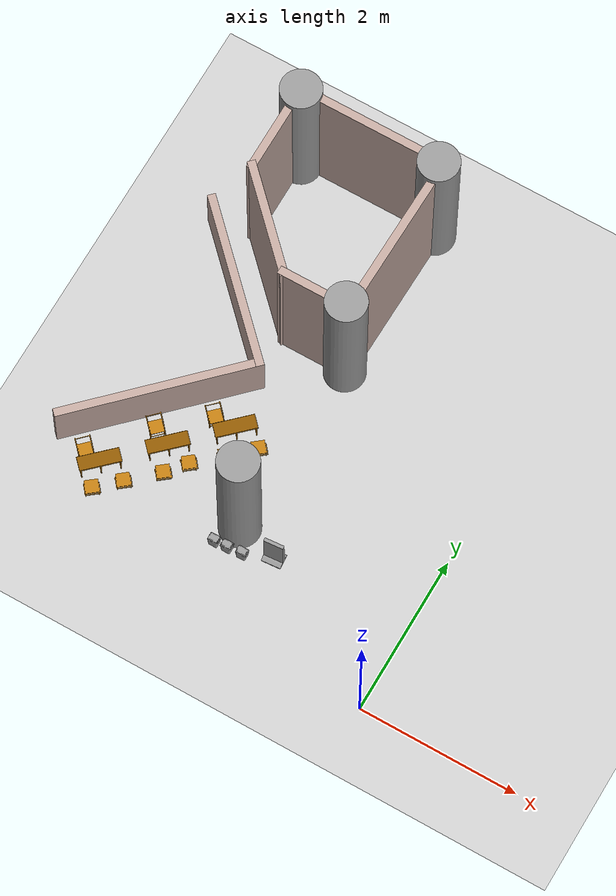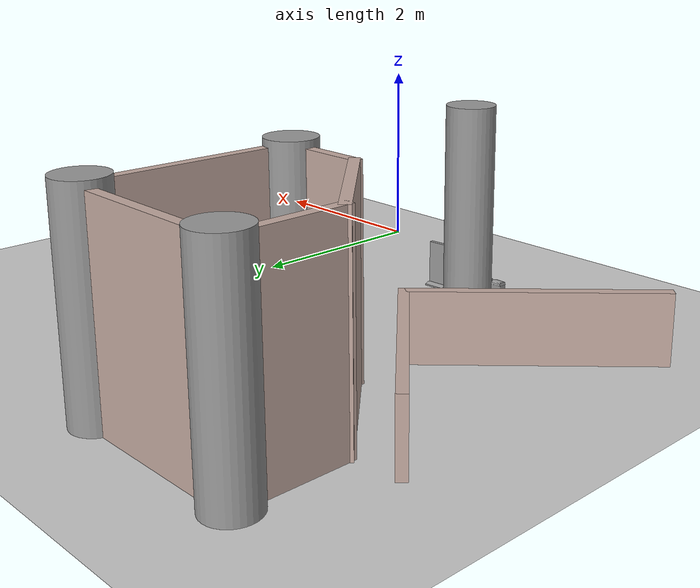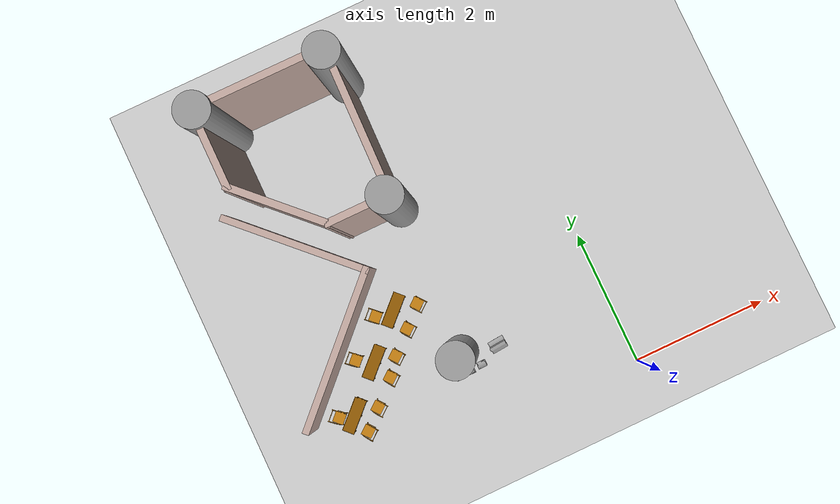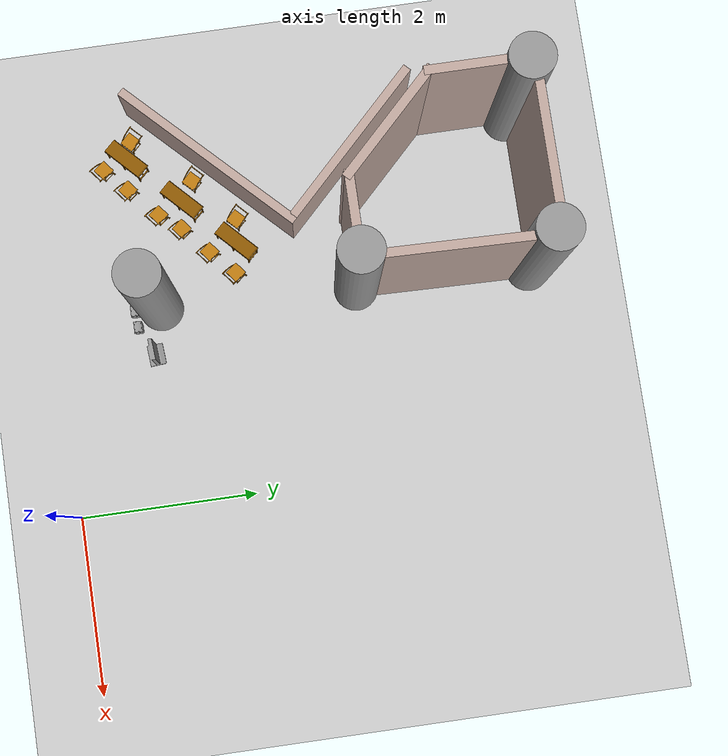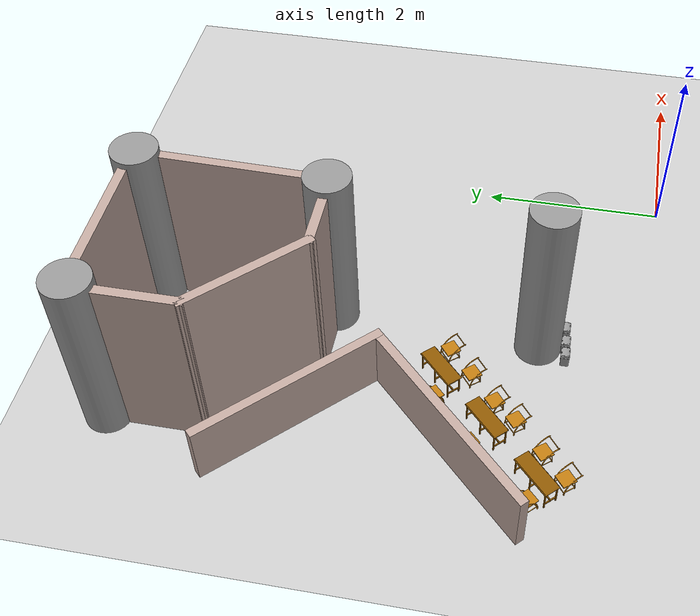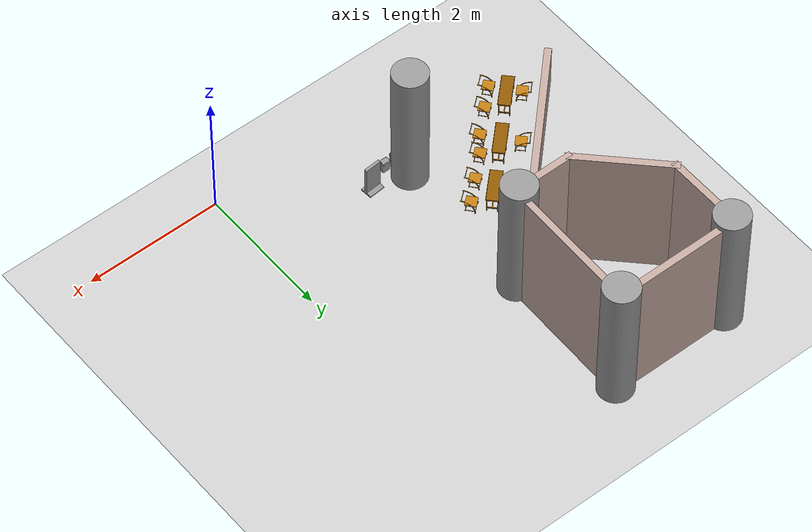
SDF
<sdf version="1.6">
 <world name="default">
  <model name="ground_plane">
   <static>1</static>
   <link name="link">
    <collision name="collision">
     <geometry><plane><normal>0 0 1</normal><size>100 100</size></plane></geometry>
     <surface>
      <contact><collide_bitmask>65535</collide_bitmask></contact>
      <friction><ode><mu>100</mu><mu2>50</mu2></ode></friction>
     </surface>
    </collision>
    <visual name="visual">
     <cast_shadows>0</cast_shadows>
     <geometry><plane><normal>0 0 1</normal><size>100 100</size></plane></geometry>
     <material>
      <script><uri>file://media/materials/scripts/gazebo.material</uri><name>Gazebo/Grey</name></script>
     </material>
    </visual>
   </link>
  </model>
  <model name="gedung_p">
   <pose>2.96636 -2.09069 0 0 -0 0</pose>
   <link name="Wall_104">
    <collision name="Wall_104_Collision">
     <geometry><box><size>1.44987 0.1 2</size></box></geometry>
     <pose>0 0 1 0 -0 0</pose>
    </collision>
    <visual name="Wall_104_Visual">
     <pose>0 0 1 0 -0 0</pose>
     <geometry><box><size>1.44987 0.1 2</size></box></geometry>
     <material>
      <script><uri>file://media/materials/scripts/gazebo.material</uri><name>Gazebo/Grey</name></script>
      <ambient>0.760784 0.662745 0.627451 1</ambient>
     </material>
     <meta><layer>0</layer></meta>
    </visual>
    <pose>-6.41651 6.00131 0 0 -0 -0.785922</pose>
   </link>
   <link name="Wall_105">
    <collision name="Wall_105_Collision">
     <geometry><box><size>0.95 0.1 2</size></box></geometry>
     <pose>0 0 1 0 -0 0</pose>
    </collision>
    <visual name="Wall_105_Visual">
     <pose>0 0 1 0 -0 0</pose>
     <geometry><box><size>0.95 0.1 2</size></box></geometry>
     <material>
      <script><uri>file://media/materials/scripts/gazebo.material</uri><name>Gazebo/Grey</name></script>
      <ambient>0.760784 0.662745 0.627451 1</ambient>
     </material>
     <meta><layer>0</layer></meta>
    </visual>
    <pose>-5.51451 5.52381 0 0 -0 0</pose>
   </link>
   <link name="Wall_124">
    <collision name="Wall_124_Collision">
     <geometry><box><size>1.2 0.1 2</size></box></geometry>
     <pose>0 0 1 0 -0 0</pose>
    </collision>
    <visual name="Wall_124_Visual">
     <pose>0 0 1 0 -0 0</pose>
     <geometry><box><size>1.2 0.1 2</size></box></geometry>
     <material>
      <script><uri>file://media/materials/scripts/gazebo.material</uri><name>Gazebo/Grey</name></script>
      <ambient>0.760784 0.662745 0.627451 1</ambient>
     </material>
     <meta><layer>0</layer></meta>
    </visual>
    <pose>-6.89351 7.02881 0 0 -0 1.5708</pose>
   </link>
   <link name="Wall_125">
    <collision name="Wall_125_Collision">
     <geometry><box><size>1.95 0.1 2</size></box></geometry>
     <pose>0 0 1 0 -0 0</pose>
    </collision>
    <visual name="Wall_125_Visual">
     <pose>0 0 1 0 -0 0</pose>
     <geometry><box><size>1.95 0.1 2</size></box></geometry>
     <material>
      <script><uri>file://media/materials/scripts/gazebo.material</uri><name>Gazebo/Grey</name></script>
      <ambient>0.760784 0.662745 0.627451 1</ambient>
     </material>
     <meta><layer>0</layer></meta>
    </visual>
    <pose>-5.96851 7.57881 0 0 -0 0</pose>
   </link>
   <link name="Wall_126">
    <collision name="Wall_126_Collision">
     <geometry><box><size>2.15551 0.1 2</size></box></geometry>
     <pose>0 0 1 0 -0 0</pose>
    </collision>
    <visual name="Wall_126_Visual">
     <pose>0 0 1 0 -0 0</pose>
     <geometry><box><size>2.15551 0.1 2</size></box></geometry>
     <material>
      <script><uri>file://media/materials/scripts/gazebo.material</uri><name>Gazebo/Grey</name></script>
      <ambient>0.760784 0.662745 0.627451 1</ambient>
     </material>
     <meta><layer>0</layer></meta>
    </visual>
    <pose>-5.06651 6.55131 0 0 -0 -1.59318</pose>
   </link>
   <link name="Wall_274">
    <collision name="Wall_274_Collision">
     <geometry><box><size>0.286601 0.2 2</size></box></geometry>
     <pose>0 0 1 0 -0 0</pose>
    </collision>
    <visual name="Wall_274_Visual">
     <pose>0 0 1 0 -0 0</pose>
     <geometry><box><size>0.286601 0.2 2</size></box></geometry>
     <material>
      <script><uri>file://media/materials/scripts/gazebo.material</uri><name>Gazebo/Grey</name></script>
      <ambient>0.760784 0.662745 0.627451 1</ambient>
     </material>
     <meta><layer>0</layer></meta>
    </visual>
    <pose>-5.16914 3.28263 0 0 -0 0.110657</pose>
   </link>
   <link name="Wall_36">
    <collision name="Wall_36_Collision">
     <geometry><box><size>2.2 0.1 0.7</size></box></geometry>
     <pose>0 0 0.35 0 -0 0</pose>
    </collision>
    <visual name="Wall_36_Visual">
     <pose>0 0 0.35 0 -0 0</pose>
     <geometry><box><size>2.2 0.1 0.7</size></box></geometry>
     <material>
      <script><uri>file://media/materials/scripts/gazebo.material</uri><name>Gazebo/Grey</name></script>
      <ambient>0.760784 0.662745 0.627451 1</ambient>
     </material>
     <meta><layer>0</layer></meta>
    </visual>
    <pose>-6.64101 5.64931 0 0 -0 -0.785398</pose>
   </link>
   <link name="Wall_38">
    <collision name="Wall_38_Collision">
     <geometry><box><size>2.45 0.1 0.7</size></box></geometry>
     <pose>0 0 0.35 0 -0 0</pose>
    </collision>
    <visual name="Wall_38_Visual">
     <pose>0 0 0.35 0 -0 0</pose>
     <geometry><box><size>2.45 0.1 0.7</size></box></geometry>
     <material>
      <script><uri>file://media/materials/scripts/gazebo.material</uri><name>Gazebo/Grey</name></script>
      <ambient>0.760784 0.662745 0.627451 1</ambient>
     </material>
     <meta><layer>0</layer></meta>
    </visual>
    <pose>-6.72951 4.0758 0 0 -0 -2.35619</pose>
   </link>
   <static>1</static>
  </model>
  <model name="tiang_besar_23">
   <link name="link_0">
    <inertial>
     <mass>1</mass>
     <inertia>
      <ixx>0.166667</ixx>
      <ixy>0</ixy>
      <ixz>0</ixz>
      <iyy>0.166667</iyy>
      <iyz>0</iyz>
      <izz>0.166667</izz>
     </inertia>
    </inertial>
    <pose>0.080543 -0.031124 0 0 -0 0</pose>
    <visual name="visual">
     <geometry>
      <mesh><uri>/home/thardi/Gazebo Objek/cylinder sedang.dae</uri><scale>1 1 1.15</scale></mesh>
     </geometry>
     <material>
      <lighting>1</lighting>
      <script><uri>file://media/materials/scripts/gazebo.material</uri><name>Gazebo/Grey</name></script>
      <shader type="vertex"><normal_map>__default__</normal_map></shader>
      <ambient>0.3 0.3 0.3 1</ambient>
      <diffuse>0.7 0.7 0.7 1</diffuse>
      <specular>0.01 0.01 0.01 1</specular>
      <emissive>0 0 0 1</emissive>
     </material>
    </visual>
    <collision name="collision">
     <geometry>
      <mesh><uri>/home/thardi/Gazebo Objek/cylinder sedang.dae</uri><scale>1 1 1.15</scale></mesh>
     </geometry>
     <surface>
      <friction>
       <ode><mu>1.15</mu><mu2>1</mu2><fdir1>0 0 0</fdir1><slip1>0</slip1><slip2>0</slip2></ode>
       <torsional>
        <coefficient>1</coefficient>
        <patch_radius>0</patch_radius>
        <surface_radius>0</surface_radius>
        <use_patch_radius>1</use_patch_radius>
        <ode><slip>0</slip></ode>
       </torsional>
      </friction>
      <bounce><restitution_coefficient>0</restitution_coefficient><threshold>1e+06</threshold></bounce>
      <contact>
       <collide_without_contact>0</collide_without_contact>
       <collide_without_contact_bitmask>1</collide_without_contact_bitmask>
       <collide_bitmask>1</collide_bitmask>
       <ode>
        <soft_cfm>0</soft_cfm>
        <soft_erp>0.2</soft_erp>
        <kp>1e+13</kp>
        <kd>1</kd>
        <max_vel>0.01</max_vel>
        <min_depth>0</min_depth>
       </ode>
       <bullet>
        <split_impulse>1</split_impulse>
        <split_impulse_penetration_threshold>-0.01</split_impulse_penetration_threshold>
        <soft_cfm>0</soft_cfm>
        <soft_erp>0.2</soft_erp>
        <kp>1e+13</kp>
        <kd>1</kd>
       </bullet>
      </contact>
     </surface>
    </collision>
   </link>
   <static>1</static>
   <pose>-3.98707 5.47813 0 0 -0 0</pose>
  </model>
  <model name="tiang_besar_24">
   <link name="link_0">
    <inertial>
     <mass>1</mass>
     <inertia>
      <ixx>0.166667</ixx>
      <ixy>0</ixy>
      <ixz>0</ixz>
      <iyy>0.166667</iyy>
      <iyz>0</iyz>
      <izz>0.166667</izz>
     </inertia>
    </inertial>
    <pose>0.080543 -0.031124 0 0 -0 0</pose>
    <visual name="visual">
     <geometry>
      <mesh><uri>/home/thardi/Gazebo Objek/cylinder sedang.dae</uri><scale>1 1 1.15</scale></mesh>
     </geometry>
     <material>
      <lighting>1</lighting>
      <script><uri>file://media/materials/scripts/gazebo.material</uri><name>Gazebo/Grey</name></script>
      <shader type="vertex"><normal_map>__default__</normal_map></shader>
      <ambient>0.3 0.3 0.3 1</ambient>
      <diffuse>0.7 0.7 0.7 1</diffuse>
      <specular>0.01 0.01 0.01 1</specular>
      <emissive>0 0 0 1</emissive>
     </material>
    </visual>
    <collision name="collision">
     <geometry>
      <mesh><uri>/home/thardi/Gazebo Objek/cylinder sedang.dae</uri><scale>1 1 1.15</scale></mesh>
     </geometry>
     <surface>
      <friction>
       <ode><mu>1.15</mu><mu2>1</mu2><fdir1>0 0 0</fdir1><slip1>0</slip1><slip2>0</slip2></ode>
       <torsional>
        <coefficient>1</coefficient>
        <patch_radius>0</patch_radius>
        <surface_radius>0</surface_radius>
        <use_patch_radius>1</use_patch_radius>
        <ode><slip>0</slip></ode>
       </torsional>
      </friction>
      <bounce><restitution_coefficient>0</restitution_coefficient><threshold>1e+06</threshold></bounce>
      <contact>
       <collide_without_contact>0</collide_without_contact>
       <collide_without_contact_bitmask>1</collide_without_contact_bitmask>
       <collide_bitmask>1</collide_bitmask>
       <ode>
        <soft_cfm>0</soft_cfm>
        <soft_erp>0.2</soft_erp>
        <kp>1e+13</kp>
        <kd>1</kd>
        <max_vel>0.01</max_vel>
        <min_depth>0</min_depth>
       </ode>
       <bullet>
        <split_impulse>1</split_impulse>
        <split_impulse_penetration_threshold>-0.01</split_impulse_penetration_threshold>
        <soft_cfm>0</soft_cfm>
        <soft_erp>0.2</soft_erp>
        <kp>1e+13</kp>
        <kd>1</kd>
       </bullet>
      </contact>
     </surface>
    </collision>
   </link>
   <static>1</static>
   <pose>-2.19967 5.47134 0 0 -0 0</pose>
  </model>
  <model name="tiang_besar_25">
   <link name="link_0">
    <inertial>
     <mass>1</mass>
     <inertia>
      <ixx>0.166667</ixx>
      <ixy>0</ixy>
      <ixz>0</ixz>
      <iyy>0.166667</iyy>
      <iyz>0</iyz>
      <izz>0.166667</izz>
     </inertia>
    </inertial>
    <pose>0.080543 -0.031124 0 0 -0 0</pose>
    <visual name="visual">
     <geometry>
      <mesh><uri>/home/thardi/Gazebo Objek/cylinder sedang.dae</uri><scale>1 1 1.15</scale></mesh>
     </geometry>
     <material>
      <lighting>1</lighting>
      <script><uri>file://media/materials/scripts/gazebo.material</uri><name>Gazebo/Grey</name></script>
      <shader type="vertex"><normal_map>__default__</normal_map></shader>
      <ambient>0.3 0.3 0.3 1</ambient>
      <diffuse>0.7 0.7 0.7 1</diffuse>
      <specular>0.01 0.01 0.01 1</specular>
      <emissive>0 0 0 1</emissive>
     </material>
    </visual>
    <collision name="collision">
     <geometry>
      <mesh><uri>/home/thardi/Gazebo Objek/cylinder sedang.dae</uri><scale>1 1 1.15</scale></mesh>
     </geometry>
     <surface>
      <friction>
       <ode><mu>1.15</mu><mu2>1</mu2><fdir1>0 0 0</fdir1><slip1>0</slip1><slip2>0</slip2></ode>
       <torsional>
        <coefficient>1</coefficient>
        <patch_radius>0</patch_radius>
        <surface_radius>0</surface_radius>
        <use_patch_radius>1</use_patch_radius>
        <ode><slip>0</slip></ode>
       </torsional>
      </friction>
      <bounce><restitution_coefficient>0</restitution_coefficient><threshold>1e+06</threshold></bounce>
      <contact>
       <collide_without_contact>0</collide_without_contact>
       <collide_without_contact_bitmask>1</collide_without_contact_bitmask>
       <collide_bitmask>1</collide_bitmask>
       <ode>
        <soft_cfm>0</soft_cfm>
        <soft_erp>0.2</soft_erp>
        <kp>1e+13</kp>
        <kd>1</kd>
        <max_vel>0.01</max_vel>
        <min_depth>0</min_depth>
       </ode>
       <bullet>
        <split_impulse>1</split_impulse>
        <split_impulse_penetration_threshold>-0.01</split_impulse_penetration_threshold>
        <soft_cfm>0</soft_cfm>
        <soft_erp>0.2</soft_erp>
        <kp>1e+13</kp>
        <kd>1</kd>
       </bullet>
      </contact>
     </surface>
    </collision>
   </link>
   <static>1</static>
   <pose>-2.25006 3.47317 0 0 -0 0</pose>
  </model>
  <model name="tiang_besar_29">
   <link name="link_0">
    <inertial>
     <mass>1</mass>
     <inertia>
      <ixx>0.166667</ixx>
      <ixy>0</ixy>
      <ixz>0</ixz>
      <iyy>0.166667</iyy>
      <iyz>0</iyz>
      <izz>0.166667</izz>
     </inertia>
    </inertial>
    <pose>0.080543 -0.031124 0 0 -0 0</pose>
    <visual name="visual">
     <geometry>
      <mesh><uri>/home/thardi/Gazebo Objek/cylinder sedang.dae</uri><scale>1 1 1.15</scale></mesh>
     </geometry>
     <material>
      <lighting>1</lighting>
      <script><uri>file://media/materials/scripts/gazebo.material</uri><name>Gazebo/Grey</name></script>
      <shader type="vertex"><normal_map>__default__</normal_map></shader>
      <ambient>0.3 0.3 0.3 1</ambient>
      <diffuse>0.7 0.7 0.7 1</diffuse>
      <specular>0.01 0.01 0.01 1</specular>
      <emissive>0 0 0 1</emissive>
     </material>
    </visual>
    <collision name="collision">
     <geometry>
      <mesh><uri>/home/thardi/Gazebo Objek/cylinder sedang.dae</uri><scale>1 1 1.15</scale></mesh>
     </geometry>
     <surface>
      <friction>
       <ode><mu>1.15</mu><mu2>1</mu2><fdir1>0 0 0</fdir1><slip1>0</slip1><slip2>0</slip2></ode>
       <torsional>
        <coefficient>1</coefficient>
        <patch_radius>0</patch_radius>
        <surface_radius>0</surface_radius>
        <use_patch_radius>1</use_patch_radius>
        <ode><slip>0</slip></ode>
       </torsional>
      </friction>
      <bounce><restitution_coefficient>0</restitution_coefficient><threshold>1e+06</threshold></bounce>
      <contact>
       <collide_without_contact>0</collide_without_contact>
       <collide_without_contact_bitmask>1</collide_without_contact_bitmask>
       <collide_bitmask>1</collide_bitmask>
       <ode>
        <soft_cfm>0</soft_cfm>
        <soft_erp>0.2</soft_erp>
        <kp>1e+13</kp>
        <kd>1</kd>
        <max_vel>0.01</max_vel>
        <min_depth>0</min_depth>
       </ode>
       <bullet>
        <split_impulse>1</split_impulse>
        <split_impulse_penetration_threshold>-0.01</split_impulse_penetration_threshold>
        <soft_cfm>0</soft_cfm>
        <soft_erp>0.2</soft_erp>
        <kp>1e+13</kp>
        <kd>1</kd>
       </bullet>
      </contact>
     </surface>
    </collision>
   </link>
   <static>1</static>
   <pose>-2.32955 1.23091 0 0 -0 0</pose>
  </model>
  <model name="meja_kantin_4">
   <link name="link_9">
    <inertial>
     <mass>1</mass>
     <inertia>
      <ixx>0.166667</ixx>
      <ixy>0</ixy>
      <ixz>0</ixz>
      <iyy>0.166667</iyy>
      <iyz>0</iyz>
      <izz>0.166667</izz>
     </inertia>
    </inertial>
    <visual name="visual">
     <geometry>
      <mesh><uri>/home/thardi/Gazebo Objek/meja kantin.dae</uri><scale>0.25 0.25 0.3</scale></mesh>
     </geometry>
     <material>
      <lighting>1</lighting>
      <script><uri>file://media/materials/scripts/gazebo.material</uri><name>Gazebo/Grey</name></script>
      <shader type="vertex"><normal_map>__default__</normal_map></shader>
      <ambient>0.561 0.349 0.008 1</ambient>
      <diffuse>0.561 0.349 0.008 1</diffuse>
      <specular>0.561 0.349 0.008 1</specular>
      <emissive>0.561 0.349 0.008 1</emissive>
     </material>
    </visual>
    <collision name="collision">
     <geometry>
      <mesh><uri>/home/thardi/Gazebo Objek/meja kantin.dae</uri><scale>0.25 0.25 0.3</scale></mesh>
     </geometry>
     <surface>
      <friction>
       <ode><mu>1</mu><mu2>1</mu2><fdir1>0 0 0</fdir1><slip1>0</slip1><slip2>0</slip2></ode>
       <torsional>
        <coefficient>1</coefficient>
        <patch_radius>0</patch_radius>
        <surface_radius>0</surface_radius>
        <use_patch_radius>1</use_patch_radius>
        <ode><slip>0</slip></ode>
       </torsional>
      </friction>
      <bounce><restitution_coefficient>0</restitution_coefficient><threshold>1e+06</threshold></bounce>
      <contact>
       <collide_without_contact>0</collide_without_contact>
       <collide_without_contact_bitmask>1</collide_without_contact_bitmask>
       <collide_bitmask>1</collide_bitmask>
       <ode>
        <soft_cfm>0</soft_cfm>
        <soft_erp>0.2</soft_erp>
        <kp>1e+13</kp>
        <kd>1</kd>
        <max_vel>0.01</max_vel>
        <min_depth>0</min_depth>
       </ode>
       <bullet>
        <split_impulse>1</split_impulse>
        <split_impulse_penetration_threshold>-0.01</split_impulse_penetration_threshold>
        <soft_cfm>0</soft_cfm>
        <soft_erp>0.2</soft_erp>
        <kp>1e+13</kp>
        <kd>1</kd>
       </bullet>
      </contact>
     </surface>
    </collision>
   </link>
   <static>1</static>
   <pose>-3.99707 1.03898 0 0 -0 0.766666</pose>
  </model>
  <model name="meja_kantin_4_clone">
   <link name="link_9">
    <inertial>
     <mass>1</mass>
     <inertia>
      <ixx>0.166667</ixx>
      <ixy>0</ixy>
      <ixz>0</ixz>
      <iyy>0.166667</iyy>
      <iyz>0</iyz>
      <izz>0.166667</izz>
     </inertia>
    </inertial>
    <visual name="visual">
     <geometry>
      <mesh><uri>/home/thardi/Gazebo Objek/meja kantin.dae</uri><scale>0.25 0.25 0.3</scale></mesh>
     </geometry>
     <material>
      <lighting>1</lighting>
      <script><uri>file://media/materials/scripts/gazebo.material</uri><name>Gazebo/Grey</name></script>
      <shader type="vertex"><normal_map>__default__</normal_map></shader>
      <ambient>0.561 0.349 0.008 1</ambient>
      <diffuse>0.561 0.349 0.008 1</diffuse>
      <specular>0.561 0.349 0.008 1</specular>
      <emissive>0.561 0.349 0.008 1</emissive>
     </material>
    </visual>
    <collision name="collision">
     <geometry>
      <mesh><uri>/home/thardi/Gazebo Objek/meja kantin.dae</uri><scale>0.25 0.25 0.3</scale></mesh>
     </geometry>
     <surface>
      <friction>
       <ode><mu>1</mu><mu2>1</mu2><fdir1>0 0 0</fdir1><slip1>0</slip1><slip2>0</slip2></ode>
       <torsional>
        <coefficient>1</coefficient>
        <patch_radius>0</patch_radius>
        <surface_radius>0</surface_radius>
        <use_patch_radius>1</use_patch_radius>
        <ode><slip>0</slip></ode>
       </torsional>
      </friction>
      <bounce><restitution_coefficient>0</restitution_coefficient><threshold>1e+06</threshold></bounce>
      <contact>
       <collide_without_contact>0</collide_without_contact>
       <collide_without_contact_bitmask>1</collide_without_contact_bitmask>
       <collide_bitmask>1</collide_bitmask>
       <ode>
        <soft_cfm>0</soft_cfm>
        <soft_erp>0.2</soft_erp>
        <kp>1e+13</kp>
        <kd>1</kd>
        <max_vel>0.01</max_vel>
        <min_depth>0</min_depth>
       </ode>
       <bullet>
        <split_impulse>1</split_impulse>
        <split_impulse_penetration_threshold>-0.01</split_impulse_penetration_threshold>
        <soft_cfm>0</soft_cfm>
        <soft_erp>0.2</soft_erp>
        <kp>1e+13</kp>
        <kd>1</kd>
       </bullet>
      </contact>
     </surface>
    </collision>
   </link>
   <static>1</static>
   <pose>-3.43079 1.60452 0 0 -0 0.766666</pose>
  </model>
  <model name="meja_kantin_4_clone_0">
   <link name="link_9">
    <inertial>
     <mass>1</mass>
     <inertia>
      <ixx>0.166667</ixx>
      <ixy>0</ixy>
      <ixz>0</ixz>
      <iyy>0.166667</iyy>
      <iyz>0</iyz>
      <izz>0.166667</izz>
     </inertia>
    </inertial>
    <visual name="visual">
     <geometry>
      <mesh><uri>/home/thardi/Gazebo Objek/meja kantin.dae</uri><scale>0.25 0.25 0.3</scale></mesh>
     </geometry>
     <material>
      <lighting>1</lighting>
      <script><uri>file://media/materials/scripts/gazebo.material</uri><name>Gazebo/Grey</name></script>
      <shader type="vertex"><normal_map>__default__</normal_map></shader>
      <ambient>0.561 0.349 0.008 1</ambient>
      <diffuse>0.561 0.349 0.008 1</diffuse>
      <specular>0.561 0.349 0.008 1</specular>
      <emissive>0.561 0.349 0.008 1</emissive>
     </material>
    </visual>
    <collision name="collision">
     <geometry>
      <mesh><uri>/home/thardi/Gazebo Objek/meja kantin.dae</uri><scale>0.25 0.25 0.3</scale></mesh>
     </geometry>
     <surface>
      <friction>
       <ode><mu>1</mu><mu2>1</mu2><fdir1>0 0 0</fdir1><slip1>0</slip1><slip2>0</slip2></ode>
       <torsional>
        <coefficient>1</coefficient>
        <patch_radius>0</patch_radius>
        <surface_radius>0</surface_radius>
        <use_patch_radius>1</use_patch_radius>
        <ode><slip>0</slip></ode>
       </torsional>
      </friction>
      <bounce><restitution_coefficient>0</restitution_coefficient><threshold>1e+06</threshold></bounce>
      <contact>
       <collide_without_contact>0</collide_without_contact>
       <collide_without_contact_bitmask>1</collide_without_contact_bitmask>
       <collide_bitmask>1</collide_bitmask>
       <ode>
        <soft_cfm>0</soft_cfm>
        <soft_erp>0.2</soft_erp>
        <kp>1e+13</kp>
        <kd>1</kd>
        <max_vel>0.01</max_vel>
        <min_depth>0</min_depth>
       </ode>
       <bullet>
        <split_impulse>1</split_impulse>
        <split_impulse_penetration_threshold>-0.01</split_impulse_penetration_threshold>
        <soft_cfm>0</soft_cfm>
        <soft_erp>0.2</soft_erp>
        <kp>1e+13</kp>
        <kd>1</kd>
       </bullet>
      </contact>
     </surface>
    </collision>
   </link>
   <static>1</static>
   <pose>-2.86842 2.16044 0 0 -0 0.766666</pose>
  </model>
  <model name="kursi_kantin_clone_11_clone_8">
   <link name="link_1">
    <inertial>
     <mass>1</mass>
     <inertia>
      <ixx>0.166667</ixx>
      <ixy>0</ixy>
      <ixz>0</ixz>
      <iyy>0.166667</iyy>
      <iyz>0</iyz>
      <izz>0.166667</izz>
     </inertia>
    </inertial>
    <visual name="visual">
     <geometry>
      <mesh><uri>/home/thardi/Gazebo Objek/kursi kantin.dae</uri><scale>0.2 0.2 0.2</scale></mesh>
     </geometry>
     <material>
      <lighting>1</lighting>
      <script><uri>file://media/materials/scripts/gazebo.material</uri><name>Gazebo/Grey</name></script>
      <shader type="vertex"><normal_map>__default__</normal_map></shader>
      <ambient>0.757 0.49 0.067 1</ambient>
      <diffuse>0.757 0.49 0.067 1</diffuse>
      <specular>0.757 0.49 0.067 1</specular>
      <emissive>0.757 0.49 0.067 1</emissive>
     </material>
    </visual>
    <collision name="collision">
     <geometry>
      <mesh><uri>/home/thardi/Gazebo Objek/kursi kantin.dae</uri><scale>0.2 0.2 0.2</scale></mesh>
     </geometry>
     <surface>
      <friction>
       <ode><mu>1</mu><mu2>1</mu2><fdir1>0 0 0</fdir1><slip1>0</slip1><slip2>0</slip2></ode>
       <torsional>
        <coefficient>1</coefficient>
        <patch_radius>0</patch_radius>
        <surface_radius>0</surface_radius>
        <use_patch_radius>1</use_patch_radius>
        <ode><slip>0</slip></ode>
       </torsional>
      </friction>
      <bounce><restitution_coefficient>0</restitution_coefficient><threshold>1e+06</threshold></bounce>
      <contact>
       <collide_without_contact>0</collide_without_contact>
       <collide_without_contact_bitmask>1</collide_without_contact_bitmask>
       <collide_bitmask>1</collide_bitmask>
       <ode>
        <soft_cfm>0</soft_cfm>
        <soft_erp>0.2</soft_erp>
        <kp>1e+13</kp>
        <kd>1</kd>
        <max_vel>0.01</max_vel>
        <min_depth>0</min_depth>
       </ode>
       <bullet>
        <split_impulse>1</split_impulse>
        <split_impulse_penetration_threshold>-0.01</split_impulse_penetration_threshold>
        <soft_cfm>0</soft_cfm>
        <soft_erp>0.2</soft_erp>
        <kp>1e+13</kp>
        <kd>1</kd>
       </bullet>
      </contact>
     </surface>
    </collision>
   </link>
   <static>1</static>
   <pose>-3.93057 0.75128 0 0 -0 2.2458</pose>
  </model>
  <model name="kursi_kantin_clone_11_clone_8_clone">
   <link name="link_1">
    <inertial>
     <mass>1</mass>
     <inertia>
      <ixx>0.166667</ixx>
      <ixy>0</ixy>
      <ixz>0</ixz>
      <iyy>0.166667</iyy>
      <iyz>0</iyz>
      <izz>0.166667</izz>
     </inertia>
    </inertial>
    <visual name="visual">
     <geometry>
      <mesh><uri>/home/thardi/Gazebo Objek/kursi kantin.dae</uri><scale>0.2 0.2 0.2</scale></mesh>
     </geometry>
     <material>
      <lighting>1</lighting>
      <script><uri>file://media/materials/scripts/gazebo.material</uri><name>Gazebo/Grey</name></script>
      <shader type="vertex"><normal_map>__default__</normal_map></shader>
      <ambient>0.757 0.49 0.067 1</ambient>
      <diffuse>0.757 0.49 0.067 1</diffuse>
      <specular>0.757 0.49 0.067 1</specular>
      <emissive>0.757 0.49 0.067 1</emissive>
     </material>
    </visual>
    <collision name="collision">
     <geometry>
      <mesh><uri>/home/thardi/Gazebo Objek/kursi kantin.dae</uri><scale>0.2 0.2 0.2</scale></mesh>
     </geometry>
     <surface>
      <friction>
       <ode><mu>1</mu><mu2>1</mu2><fdir1>0 0 0</fdir1><slip1>0</slip1><slip2>0</slip2></ode>
       <torsional>
        <coefficient>1</coefficient>
        <patch_radius>0</patch_radius>
        <surface_radius>0</surface_radius>
        <use_patch_radius>1</use_patch_radius>
        <ode><slip>0</slip></ode>
       </torsional>
      </friction>
      <bounce><restitution_coefficient>0</restitution_coefficient><threshold>1e+06</threshold></bounce>
      <contact>
       <collide_without_contact>0</collide_without_contact>
       <collide_without_contact_bitmask>1</collide_without_contact_bitmask>
       <collide_bitmask>1</collide_bitmask>
       <ode>
        <soft_cfm>0</soft_cfm>
        <soft_erp>0.2</soft_erp>
        <kp>1e+13</kp>
        <kd>1</kd>
        <max_vel>0.01</max_vel>
        <min_depth>0</min_depth>
       </ode>
       <bullet>
        <split_impulse>1</split_impulse>
        <split_impulse_penetration_threshold>-0.01</split_impulse_penetration_threshold>
        <soft_cfm>0</soft_cfm>
        <soft_erp>0.2</soft_erp>
        <kp>1e+13</kp>
        <kd>1</kd>
       </bullet>
      </contact>
     </surface>
    </collision>
   </link>
   <static>1</static>
   <pose>-3.66317 1.00024 0 0 -0 2.2458</pose>
  </model>
  <model name="kursi_kantin_clone_11_clone_8_clone_0">
   <link name="link_1">
    <inertial>
     <mass>1</mass>
     <inertia>
      <ixx>0.166667</ixx>
      <ixy>0</ixy>
      <ixz>0</ixz>
      <iyy>0.166667</iyy>
      <iyz>0</iyz>
      <izz>0.166667</izz>
     </inertia>
    </inertial>
    <visual name="visual">
     <geometry>
      <mesh><uri>/home/thardi/Gazebo Objek/kursi kantin.dae</uri><scale>0.2 0.2 0.2</scale></mesh>
     </geometry>
     <material>
      <lighting>1</lighting>
      <script><uri>file://media/materials/scripts/gazebo.material</uri><name>Gazebo/Grey</name></script>
      <shader type="vertex"><normal_map>__default__</normal_map></shader>
      <ambient>0.757 0.49 0.067 1</ambient>
      <diffuse>0.757 0.49 0.067 1</diffuse>
      <specular>0.757 0.49 0.067 1</specular>
      <emissive>0.757 0.49 0.067 1</emissive>
     </material>
    </visual>
    <collision name="collision">
     <geometry>
      <mesh><uri>/home/thardi/Gazebo Objek/kursi kantin.dae</uri><scale>0.2 0.2 0.2</scale></mesh>
     </geometry>
     <surface>
      <friction>
       <ode><mu>1</mu><mu2>1</mu2><fdir1>0 0 0</fdir1><slip1>0</slip1><slip2>0</slip2></ode>
       <torsional>
        <coefficient>1</coefficient>
        <patch_radius>0</patch_radius>
        <surface_radius>0</surface_radius>
        <use_patch_radius>1</use_patch_radius>
        <ode><slip>0</slip></ode>
       </torsional>
      </friction>
      <bounce><restitution_coefficient>0</restitution_coefficient><threshold>1e+06</threshold></bounce>
      <contact>
       <collide_without_contact>0</collide_without_contact>
       <collide_without_contact_bitmask>1</collide_without_contact_bitmask>
       <collide_bitmask>1</collide_bitmask>
       <ode>
        <soft_cfm>0</soft_cfm>
        <soft_erp>0.2</soft_erp>
        <kp>1e+13</kp>
        <kd>1</kd>
        <max_vel>0.01</max_vel>
        <min_depth>0</min_depth>
       </ode>
       <bullet>
        <split_impulse>1</split_impulse>
        <split_impulse_penetration_threshold>-0.01</split_impulse_penetration_threshold>
        <soft_cfm>0</soft_cfm>
        <soft_erp>0.2</soft_erp>
        <kp>1e+13</kp>
        <kd>1</kd>
       </bullet>
      </contact>
     </surface>
    </collision>
   </link>
   <static>1</static>
   <pose>-3.32267 1.31331 0 0 -0 2.2458</pose>
  </model>
  <model name="kursi_kantin_clone_11_clone_8_clone_1">
   <link name="link_1">
    <inertial>
     <mass>1</mass>
     <inertia>
      <ixx>0.166667</ixx>
      <ixy>0</ixy>
      <ixz>0</ixz>
      <iyy>0.166667</iyy>
      <iyz>0</iyz>
      <izz>0.166667</izz>
     </inertia>
    </inertial>
    <visual name="visual">
     <geometry>
      <mesh><uri>/home/thardi/Gazebo Objek/kursi kantin.dae</uri><scale>0.2 0.2 0.2</scale></mesh>
     </geometry>
     <material>
      <lighting>1</lighting>
      <script><uri>file://media/materials/scripts/gazebo.material</uri><name>Gazebo/Grey</name></script>
      <shader type="vertex"><normal_map>__default__</normal_map></shader>
      <ambient>0.757 0.49 0.067 1</ambient>
      <diffuse>0.757 0.49 0.067 1</diffuse>
      <specular>0.757 0.49 0.067 1</specular>
      <emissive>0.757 0.49 0.067 1</emissive>
     </material>
    </visual>
    <collision name="collision">
     <geometry>
      <mesh><uri>/home/thardi/Gazebo Objek/kursi kantin.dae</uri><scale>0.2 0.2 0.2</scale></mesh>
     </geometry>
     <surface>
      <friction>
       <ode><mu>1</mu><mu2>1</mu2><fdir1>0 0 0</fdir1><slip1>0</slip1><slip2>0</slip2></ode>
       <torsional>
        <coefficient>1</coefficient>
        <patch_radius>0</patch_radius>
        <surface_radius>0</surface_radius>
        <use_patch_radius>1</use_patch_radius>
        <ode><slip>0</slip></ode>
       </torsional>
      </friction>
      <bounce><restitution_coefficient>0</restitution_coefficient><threshold>1e+06</threshold></bounce>
      <contact>
       <collide_without_contact>0</collide_without_contact>
       <collide_without_contact_bitmask>1</collide_without_contact_bitmask>
       <collide_bitmask>1</collide_bitmask>
       <ode>
        <soft_cfm>0</soft_cfm>
        <soft_erp>0.2</soft_erp>
        <kp>1e+13</kp>
        <kd>1</kd>
        <max_vel>0.01</max_vel>
        <min_depth>0</min_depth>
       </ode>
       <bullet>
        <split_impulse>1</split_impulse>
        <split_impulse_penetration_threshold>-0.01</split_impulse_penetration_threshold>
        <soft_cfm>0</soft_cfm>
        <soft_erp>0.2</soft_erp>
        <kp>1e+13</kp>
        <kd>1</kd>
       </bullet>
      </contact>
     </surface>
    </collision>
   </link>
   <static>1</static>
   <pose>-3.12718 1.55591 0 0 -0 2.2458</pose>
  </model>
  <model name="kursi_kantin_clone_11_clone_8_clone_2">
   <link name="link_1">
    <inertial>
     <mass>1</mass>
     <inertia>
      <ixx>0.166667</ixx>
      <ixy>0</ixy>
      <ixz>0</ixz>
      <iyy>0.166667</iyy>
      <iyz>0</iyz>
      <izz>0.166667</izz>
     </inertia>
    </inertial>
    <visual name="visual">
     <geometry>
      <mesh><uri>/home/thardi/Gazebo Objek/kursi kantin.dae</uri><scale>0.2 0.2 0.2</scale></mesh>
     </geometry>
     <material>
      <lighting>1</lighting>
      <script><uri>file://media/materials/scripts/gazebo.material</uri><name>Gazebo/Grey</name></script>
      <shader type="vertex"><normal_map>__default__</normal_map></shader>
      <ambient>0.757 0.49 0.067 1</ambient>
      <diffuse>0.757 0.49 0.067 1</diffuse>
      <specular>0.757 0.49 0.067 1</specular>
      <emissive>0.757 0.49 0.067 1</emissive>
     </material>
    </visual>
    <collision name="collision">
     <geometry>
      <mesh><uri>/home/thardi/Gazebo Objek/kursi kantin.dae</uri><scale>0.2 0.2 0.2</scale></mesh>
     </geometry>
     <surface>
      <friction>
       <ode><mu>1</mu><mu2>1</mu2><fdir1>0 0 0</fdir1><slip1>0</slip1><slip2>0</slip2></ode>
       <torsional>
        <coefficient>1</coefficient>
        <patch_radius>0</patch_radius>
        <surface_radius>0</surface_radius>
        <use_patch_radius>1</use_patch_radius>
        <ode><slip>0</slip></ode>
       </torsional>
      </friction>
      <bounce><restitution_coefficient>0</restitution_coefficient><threshold>1e+06</threshold></bounce>
      <contact>
       <collide_without_contact>0</collide_without_contact>
       <collide_without_contact_bitmask>1</collide_without_contact_bitmask>
       <collide_bitmask>1</collide_bitmask>
       <ode>
        <soft_cfm>0</soft_cfm>
        <soft_erp>0.2</soft_erp>
        <kp>1e+13</kp>
        <kd>1</kd>
        <max_vel>0.01</max_vel>
        <min_depth>0</min_depth>
       </ode>
       <bullet>
        <split_impulse>1</split_impulse>
        <split_impulse_penetration_threshold>-0.01</split_impulse_penetration_threshold>
        <soft_cfm>0</soft_cfm>
        <soft_erp>0.2</soft_erp>
        <kp>1e+13</kp>
        <kd>1</kd>
       </bullet>
      </contact>
     </surface>
    </collision>
   </link>
   <static>1</static>
   <pose>-2.81278 1.83872 0 0 -0 2.2458</pose>
  </model>
  <model name="kursi_kantin_clone_11_clone_8_clone_3">
   <link name="link_1">
    <inertial>
     <mass>1</mass>
     <inertia>
      <ixx>0.166667</ixx>
      <ixy>0</ixy>
      <ixz>0</ixz>
      <iyy>0.166667</iyy>
      <iyz>0</iyz>
      <izz>0.166667</izz>
     </inertia>
    </inertial>
    <visual name="visual">
     <geometry>
      <mesh><uri>/home/thardi/Gazebo Objek/kursi kantin.dae</uri><scale>0.2 0.2 0.2</scale></mesh>
     </geometry>
     <material>
      <lighting>1</lighting>
      <script><uri>file://media/materials/scripts/gazebo.material</uri><name>Gazebo/Grey</name></script>
      <shader type="vertex"><normal_map>__default__</normal_map></shader>
      <ambient>0.757 0.49 0.067 1</ambient>
      <diffuse>0.757 0.49 0.067 1</diffuse>
      <specular>0.757 0.49 0.067 1</specular>
      <emissive>0.757 0.49 0.067 1</emissive>
     </material>
    </visual>
    <collision name="collision">
     <geometry>
      <mesh><uri>/home/thardi/Gazebo Objek/kursi kantin.dae</uri><scale>0.2 0.2 0.2</scale></mesh>
     </geometry>
     <surface>
      <friction>
       <ode><mu>1</mu><mu2>1</mu2><fdir1>0 0 0</fdir1><slip1>0</slip1><slip2>0</slip2></ode>
       <torsional>
        <coefficient>1</coefficient>
        <patch_radius>0</patch_radius>
        <surface_radius>0</surface_radius>
        <use_patch_radius>1</use_patch_radius>
        <ode><slip>0</slip></ode>
       </torsional>
      </friction>
      <bounce><restitution_coefficient>0</restitution_coefficient><threshold>1e+06</threshold></bounce>
      <contact>
       <collide_without_contact>0</collide_without_contact>
       <collide_without_contact_bitmask>1</collide_without_contact_bitmask>
       <collide_bitmask>1</collide_bitmask>
       <ode>
        <soft_cfm>0</soft_cfm>
        <soft_erp>0.2</soft_erp>
        <kp>1e+13</kp>
        <kd>1</kd>
        <max_vel>0.01</max_vel>
        <min_depth>0</min_depth>
       </ode>
       <bullet>
        <split_impulse>1</split_impulse>
        <split_impulse_penetration_threshold>-0.01</split_impulse_penetration_threshold>
        <soft_cfm>0</soft_cfm>
        <soft_erp>0.2</soft_erp>
        <kp>1e+13</kp>
        <kd>1</kd>
       </bullet>
      </contact>
     </surface>
    </collision>
   </link>
   <static>1</static>
   <pose>-2.53072 2.10523 0 0 -0 2.2458</pose>
  </model>
  <model name="kursi_kantin_clone_11_clone_8_clone_4">
   <link name="link_1">
    <inertial>
     <mass>1</mass>
     <inertia>
      <ixx>0.166667</ixx>
      <ixy>0</ixy>
      <ixz>0</ixz>
      <iyy>0.166667</iyy>
      <iyz>0</iyz>
      <izz>0.166667</izz>
     </inertia>
    </inertial>
    <visual name="visual">
     <geometry>
      <mesh><uri>/home/thardi/Gazebo Objek/kursi kantin.dae</uri><scale>0.2 0.2 0.2</scale></mesh>
     </geometry>
     <material>
      <lighting>1</lighting>
      <script><uri>file://media/materials/scripts/gazebo.material</uri><name>Gazebo/Grey</name></script>
      <shader type="vertex"><normal_map>__default__</normal_map></shader>
      <ambient>0.757 0.49 0.067 1</ambient>
      <diffuse>0.757 0.49 0.067 1</diffuse>
      <specular>0.757 0.49 0.067 1</specular>
      <emissive>0.757 0.49 0.067 1</emissive>
     </material>
    </visual>
    <collision name="collision">
     <geometry>
      <mesh><uri>/home/thardi/Gazebo Objek/kursi kantin.dae</uri><scale>0.2 0.2 0.2</scale></mesh>
     </geometry>
     <surface>
      <friction>
       <ode><mu>1</mu><mu2>1</mu2><fdir1>0 0 0</fdir1><slip1>0</slip1><slip2>0</slip2></ode>
       <torsional>
        <coefficient>1</coefficient>
        <patch_radius>0</patch_radius>
        <surface_radius>0</surface_radius>
        <use_patch_radius>1</use_patch_radius>
        <ode><slip>0</slip></ode>
       </torsional>
      </friction>
      <bounce><restitution_coefficient>0</restitution_coefficient><threshold>1e+06</threshold></bounce>
      <contact>
       <collide_without_contact>0</collide_without_contact>
       <collide_without_contact_bitmask>1</collide_without_contact_bitmask>
       <collide_bitmask>1</collide_bitmask>
       <ode>
        <soft_cfm>0</soft_cfm>
        <soft_erp>0.2</soft_erp>
        <kp>1e+13</kp>
        <kd>1</kd>
        <max_vel>0.01</max_vel>
        <min_depth>0</min_depth>
       </ode>
       <bullet>
        <split_impulse>1</split_impulse>
        <split_impulse_penetration_threshold>-0.01</split_impulse_penetration_threshold>
        <soft_cfm>0</soft_cfm>
        <soft_erp>0.2</soft_erp>
        <kp>1e+13</kp>
        <kd>1</kd>
       </bullet>
      </contact>
     </surface>
    </collision>
   </link>
   <static>1</static>
   <pose>-4.22425 1.09939 0 0 0 -0.789587</pose>
  </model>
  <model name="kursi_kantin_clone_11_clone_8_clone_4_clone">
   <link name="link_1">
    <inertial>
     <mass>1</mass>
     <inertia>
      <ixx>0.166667</ixx>
      <ixy>0</ixy>
      <ixz>0</ixz>
      <iyy>0.166667</iyy>
      <iyz>0</iyz>
      <izz>0.166667</izz>
     </inertia>
    </inertial>
    <visual name="visual">
     <geometry>
      <mesh><uri>/home/thardi/Gazebo Objek/kursi kantin.dae</uri><scale>0.2 0.2 0.2</scale></mesh>
     </geometry>
     <material>
      <lighting>1</lighting>
      <script><uri>file://media/materials/scripts/gazebo.material</uri><name>Gazebo/Grey</name></script>
      <shader type="vertex"><normal_map>__default__</normal_map></shader>
      <ambient>0.757 0.49 0.067 1</ambient>
      <diffuse>0.757 0.49 0.067 1</diffuse>
      <specular>0.757 0.49 0.067 1</specular>
      <emissive>0.757 0.49 0.067 1</emissive>
     </material>
    </visual>
    <collision name="collision">
     <geometry>
      <mesh><uri>/home/thardi/Gazebo Objek/kursi kantin.dae</uri><scale>0.2 0.2 0.2</scale></mesh>
     </geometry>
     <surface>
      <friction>
       <ode><mu>1</mu><mu2>1</mu2><fdir1>0 0 0</fdir1><slip1>0</slip1><slip2>0</slip2></ode>
       <torsional>
        <coefficient>1</coefficient>
        <patch_radius>0</patch_radius>
        <surface_radius>0</surface_radius>
        <use_patch_radius>1</use_patch_radius>
        <ode><slip>0</slip></ode>
       </torsional>
      </friction>
      <bounce><restitution_coefficient>0</restitution_coefficient><threshold>1e+06</threshold></bounce>
      <contact>
       <collide_without_contact>0</collide_without_contact>
       <collide_without_contact_bitmask>1</collide_without_contact_bitmask>
       <collide_bitmask>1</collide_bitmask>
       <ode>
        <soft_cfm>0</soft_cfm>
        <soft_erp>0.2</soft_erp>
        <kp>1e+13</kp>
        <kd>1</kd>
        <max_vel>0.01</max_vel>
        <min_depth>0</min_depth>
       </ode>
       <bullet>
        <split_impulse>1</split_impulse>
        <split_impulse_penetration_threshold>-0.01</split_impulse_penetration_threshold>
        <soft_cfm>0</soft_cfm>
        <soft_erp>0.2</soft_erp>
        <kp>1e+13</kp>
        <kd>1</kd>
       </bullet>
      </contact>
     </surface>
    </collision>
   </link>
   <static>1</static>
   <pose>-3.6675 1.74255 0 0 0 -0.789587</pose>
  </model>
  <model name="kursi_kantin_clone_11_clone_8_clone_4_clone_0">
   <link name="link_1">
    <inertial>
     <mass>1</mass>
     <inertia>
      <ixx>0.166667</ixx>
      <ixy>0</ixy>
      <ixz>0</ixz>
      <iyy>0.166667</iyy>
      <iyz>0</iyz>
      <izz>0.166667</izz>
     </inertia>
    </inertial>
    <visual name="visual">
     <geometry>
      <mesh><uri>/home/thardi/Gazebo Objek/kursi kantin.dae</uri><scale>0.2 0.2 0.2</scale></mesh>
     </geometry>
     <material>
      <lighting>1</lighting>
      <script><uri>file://media/materials/scripts/gazebo.material</uri><name>Gazebo/Grey</name></script>
      <shader type="vertex"><normal_map>__default__</normal_map></shader>
      <ambient>0.757 0.49 0.067 1</ambient>
      <diffuse>0.757 0.49 0.067 1</diffuse>
      <specular>0.757 0.49 0.067 1</specular>
      <emissive>0.757 0.49 0.067 1</emissive>
     </material>
    </visual>
    <collision name="collision">
     <geometry>
      <mesh><uri>/home/thardi/Gazebo Objek/kursi kantin.dae</uri><scale>0.2 0.2 0.2</scale></mesh>
     </geometry>
     <surface>
      <friction>
       <ode><mu>1</mu><mu2>1</mu2><fdir1>0 0 0</fdir1><slip1>0</slip1><slip2>0</slip2></ode>
       <torsional>
        <coefficient>1</coefficient>
        <patch_radius>0</patch_radius>
        <surface_radius>0</surface_radius>
        <use_patch_radius>1</use_patch_radius>
        <ode><slip>0</slip></ode>
       </torsional>
      </friction>
      <bounce><restitution_coefficient>0</restitution_coefficient><threshold>1e+06</threshold></bounce>
      <contact>
       <collide_without_contact>0</collide_without_contact>
       <collide_without_contact_bitmask>1</collide_without_contact_bitmask>
       <collide_bitmask>1</collide_bitmask>
       <ode>
        <soft_cfm>0</soft_cfm>
        <soft_erp>0.2</soft_erp>
        <kp>1e+13</kp>
        <kd>1</kd>
        <max_vel>0.01</max_vel>
        <min_depth>0</min_depth>
       </ode>
       <bullet>
        <split_impulse>1</split_impulse>
        <split_impulse_penetration_threshold>-0.01</split_impulse_penetration_threshold>
        <soft_cfm>0</soft_cfm>
        <soft_erp>0.2</soft_erp>
        <kp>1e+13</kp>
        <kd>1</kd>
       </bullet>
      </contact>
     </surface>
    </collision>
   </link>
   <static>1</static>
   <pose>-3.15042 2.18925 0 0 0 -0.789587</pose>
  </model>
  <model name="divo">
   <link name="link_0">
    <inertial>
     <mass>1</mass>
     <inertia>
      <ixx>0.166667</ixx>
      <ixy>0</ixy>
      <ixz>0</ixz>
      <iyy>0.166667</iyy>
      <iyz>0</iyz>
      <izz>0.166667</izz>
     </inertia>
    </inertial>
    <visual name="visual">
     <geometry><mesh><uri>/home/thardi/Gazebo Objek/DiVO.dae</uri><scale>0.3 0.3 0.3</scale></mesh></geometry>
     <material>
      <lighting>1</lighting>
      <script><uri>file://media/materials/scripts/gazebo.material</uri><name>Gazebo/Grey</name></script>
      <shader type="vertex"><normal_map>__default__</normal_map></shader>
      <ambient>0.729 0.741 0.714 1</ambient>
      <diffuse>0.729 0.741 0.714 1</diffuse>
      <specular>0.729 0.741 0.714 1</specular>
      <emissive>0.729 0.741 0.714 1</emissive>
     </material>
    </visual>
    <collision name="collision">
     <geometry><mesh><uri>/home/thardi/Gazebo Objek/DiVO.dae</uri><scale>0.3 0.3 0.3</scale></mesh></geometry>
     <surface>
      <friction>
       <ode><mu>1</mu><mu2>1</mu2><fdir1>0 0 0</fdir1><slip1>0</slip1><slip2>0</slip2></ode>
       <torsional>
        <coefficient>1</coefficient>
        <patch_radius>0</patch_radius>
        <surface_radius>0</surface_radius>
        <use_patch_radius>1</use_patch_radius>
        <ode><slip>0</slip></ode>
       </torsional>
      </friction>
      <bounce><restitution_coefficient>0</restitution_coefficient><threshold>1e+06</threshold></bounce>
      <contact>
       <collide_without_contact>0</collide_without_contact>
       <collide_without_contact_bitmask>1</collide_without_contact_bitmask>
       <collide_bitmask>1</collide_bitmask>
       <ode>
        <soft_cfm>0</soft_cfm>
        <soft_erp>0.2</soft_erp>
        <kp>1e+13</kp>
        <kd>1</kd>
        <max_vel>0.01</max_vel>
        <min_depth>0</min_depth>
       </ode>
       <bullet>
        <split_impulse>1</split_impulse>
        <split_impulse_penetration_threshold>-0.01</split_impulse_penetration_threshold>
        <soft_cfm>0</soft_cfm>
        <soft_erp>0.2</soft_erp>
        <kp>1e+13</kp>
        <kd>1</kd>
       </bullet>
      </contact>
     </surface>
    </collision>
   </link>
   <static>1</static>
   <pose>-1.72995 1.07199 0 0 0 -1.49047</pose>
  </model>
  <model name="tong_sampah_0">
   <link name="link_13">
    <inertial>
     <mass>1</mass>
     <inertia>
      <ixx>0.166667</ixx>
      <ixy>0</ixy>
      <ixz>0</ixz>
      <iyy>0.166667</iyy>
      <iyz>0</iyz>
      <izz>0.166667</izz>
     </inertia>
    </inertial>
    <visual name="visual">
     <geometry>
      <mesh><uri>/home/thardi/Gazebo Objek/tong sampah.dae</uri><scale>0.05 0.05 0.05</scale></mesh>
     </geometry>
     <material>
      <lighting>1</lighting>
      <script><uri>file://media/materials/scripts/gazebo.material</uri><name>Gazebo/Grey</name></script>
      <shader type="vertex"><normal_map>__default__</normal_map></shader>
      <ambient>0.3 0.3 0.3 1</ambient>
      <diffuse>0.7 0.7 0.7 1</diffuse>
      <specular>0.01 0.01 0.01 1</specular>
      <emissive>0 0 0 1</emissive>
     </material>
    </visual>
    <collision name="collision">
     <geometry>
      <mesh><uri>/home/thardi/Gazebo Objek/tong sampah.dae</uri><scale>0.05 0.05 0.05</scale></mesh>
     </geometry>
     <surface>
      <friction>
       <ode><mu>1</mu><mu2>1</mu2><fdir1>0 0 0</fdir1><slip1>0</slip1><slip2>0</slip2></ode>
       <torsional>
        <coefficient>1</coefficient>
        <patch_radius>0</patch_radius>
        <surface_radius>0</surface_radius>
        <use_patch_radius>1</use_patch_radius>
        <ode><slip>0</slip></ode>
       </torsional>
      </friction>
      <bounce><restitution_coefficient>0</restitution_coefficient><threshold>1e+06</threshold></bounce>
      <contact>
       <collide_without_contact>0</collide_without_contact>
       <collide_without_contact_bitmask>1</collide_without_contact_bitmask>
       <collide_bitmask>1</collide_bitmask>
       <ode>
        <soft_cfm>0</soft_cfm>
        <soft_erp>0.2</soft_erp>
        <kp>1e+13</kp>
        <kd>1</kd>
        <max_vel>0.01</max_vel>
        <min_depth>0</min_depth>
       </ode>
       <bullet>
        <split_impulse>1</split_impulse>
        <split_impulse_penetration_threshold>-0.01</split_impulse_penetration_threshold>
        <soft_cfm>0</soft_cfm>
        <soft_erp>0.2</soft_erp>
        <kp>1e+13</kp>
        <kd>1</kd>
       </bullet>
      </contact>
     </surface>
    </collision>
   </link>
   <static>1</static>
   <pose>-2.47317 0.845076 0 0 -0 0</pose>
  </model>
  <model name="tong_sampah_1">
   <link name="link_13">
    <inertial>
     <mass>1</mass>
     <inertia>
      <ixx>0.166667</ixx>
      <ixy>0</ixy>
      <ixz>0</ixz>
      <iyy>0.166667</iyy>
      <iyz>0</iyz>
      <izz>0.166667</izz>
     </inertia>
    </inertial>
    <visual name="visual">
     <geometry>
      <mesh><uri>/home/thardi/Gazebo Objek/tong sampah.dae</uri><scale>0.05 0.05 0.05</scale></mesh>
     </geometry>
     <material>
      <lighting>1</lighting>
      <script><uri>file://media/materials/scripts/gazebo.material</uri><name>Gazebo/Grey</name></script>
      <shader type="vertex"><normal_map>__default__</normal_map></shader>
      <ambient>0.3 0.3 0.3 1</ambient>
      <diffuse>0.7 0.7 0.7 1</diffuse>
      <specular>0.01 0.01 0.01 1</specular>
      <emissive>0 0 0 1</emissive>
     </material>
    </visual>
    <collision name="collision">
     <geometry>
      <mesh><uri>/home/thardi/Gazebo Objek/tong sampah.dae</uri><scale>0.05 0.05 0.05</scale></mesh>
     </geometry>
     <surface>
      <friction>
       <ode><mu>1</mu><mu2>1</mu2><fdir1>0 0 0</fdir1><slip1>0</slip1><slip2>0</slip2></ode>
       <torsional>
        <coefficient>1</coefficient>
        <patch_radius>0</patch_radius>
        <surface_radius>0</surface_radius>
        <use_patch_radius>1</use_patch_radius>
        <ode><slip>0</slip></ode>
       </torsional>
      </friction>
      <bounce><restitution_coefficient>0</restitution_coefficient><threshold>1e+06</threshold></bounce>
      <contact>
       <collide_without_contact>0</collide_without_contact>
       <collide_without_contact_bitmask>1</collide_without_contact_bitmask>
       <collide_bitmask>1</collide_bitmask>
       <ode>
        <soft_cfm>0</soft_cfm>
        <soft_erp>0.2</soft_erp>
        <kp>1e+13</kp>
        <kd>1</kd>
        <max_vel>0.01</max_vel>
        <min_depth>0</min_depth>
       </ode>
       <bullet>
        <split_impulse>1</split_impulse>
        <split_impulse_penetration_threshold>-0.01</split_impulse_penetration_threshold>
        <soft_cfm>0</soft_cfm>
        <soft_erp>0.2</soft_erp>
        <kp>1e+13</kp>
        <kd>1</kd>
       </bullet>
      </contact>
     </surface>
    </collision>
   </link>
   <static>1</static>
   <pose>-2.30972 0.853702 0 0 -0 0</pose>
  </model>
  <model name="tong_sampah_2">
   <link name="link_13">
    <inertial>
     <mass>1</mass>
     <inertia>
      <ixx>0.166667</ixx>
      <ixy>0</ixy>
      <ixz>0</ixz>
      <iyy>0.166667</iyy>
      <iyz>0</iyz>
      <izz>0.166667</izz>
     </inertia>
    </inertial>
    <visual name="visual">
     <geometry>
      <mesh><uri>/home/thardi/Gazebo Objek/tong sampah.dae</uri><scale>0.05 0.05 0.05</scale></mesh>
     </geometry>
     <material>
      <lighting>1</lighting>
      <script><uri>file://media/materials/scripts/gazebo.material</uri><name>Gazebo/Grey</name></script>
      <shader type="vertex"><normal_map>__default__</normal_map></shader>
      <ambient>0.3 0.3 0.3 1</ambient>
      <diffuse>0.7 0.7 0.7 1</diffuse>
      <specular>0.01 0.01 0.01 1</specular>
      <emissive>0 0 0 1</emissive>
     </material>
    </visual>
    <collision name="collision">
     <geometry>
      <mesh><uri>/home/thardi/Gazebo Objek/tong sampah.dae</uri><scale>0.05 0.05 0.05</scale></mesh>
     </geometry>
     <surface>
      <friction>
       <ode><mu>1</mu><mu2>1</mu2><fdir1>0 0 0</fdir1><slip1>0</slip1><slip2>0</slip2></ode>
       <torsional>
        <coefficient>1</coefficient>
        <patch_radius>0</patch_radius>
        <surface_radius>0</surface_radius>
        <use_patch_radius>1</use_patch_radius>
        <ode><slip>0</slip></ode>
       </torsional>
      </friction>
      <bounce><restitution_coefficient>0</restitution_coefficient><threshold>1e+06</threshold></bounce>
      <contact>
       <collide_without_contact>0</collide_without_contact>
       <collide_without_contact_bitmask>1</collide_without_contact_bitmask>
       <collide_bitmask>1</collide_bitmask>
       <ode>
        <soft_cfm>0</soft_cfm>
        <soft_erp>0.2</soft_erp>
        <kp>1e+13</kp>
        <kd>1</kd>
        <max_vel>0.01</max_vel>
        <min_depth>0</min_depth>
       </ode>
       <bullet>
        <split_impulse>1</split_impulse>
        <split_impulse_penetration_threshold>-0.01</split_impulse_penetration_threshold>
        <soft_cfm>0</soft_cfm>
        <soft_erp>0.2</soft_erp>
        <kp>1e+13</kp>
        <kd>1</kd>
       </bullet>
      </contact>
     </surface>
    </collision>
   </link>
   <static>1</static>
   <pose>-2.12105 0.869026 0 0 -0 0</pose>
  </model>
 </world>
</sdf>
